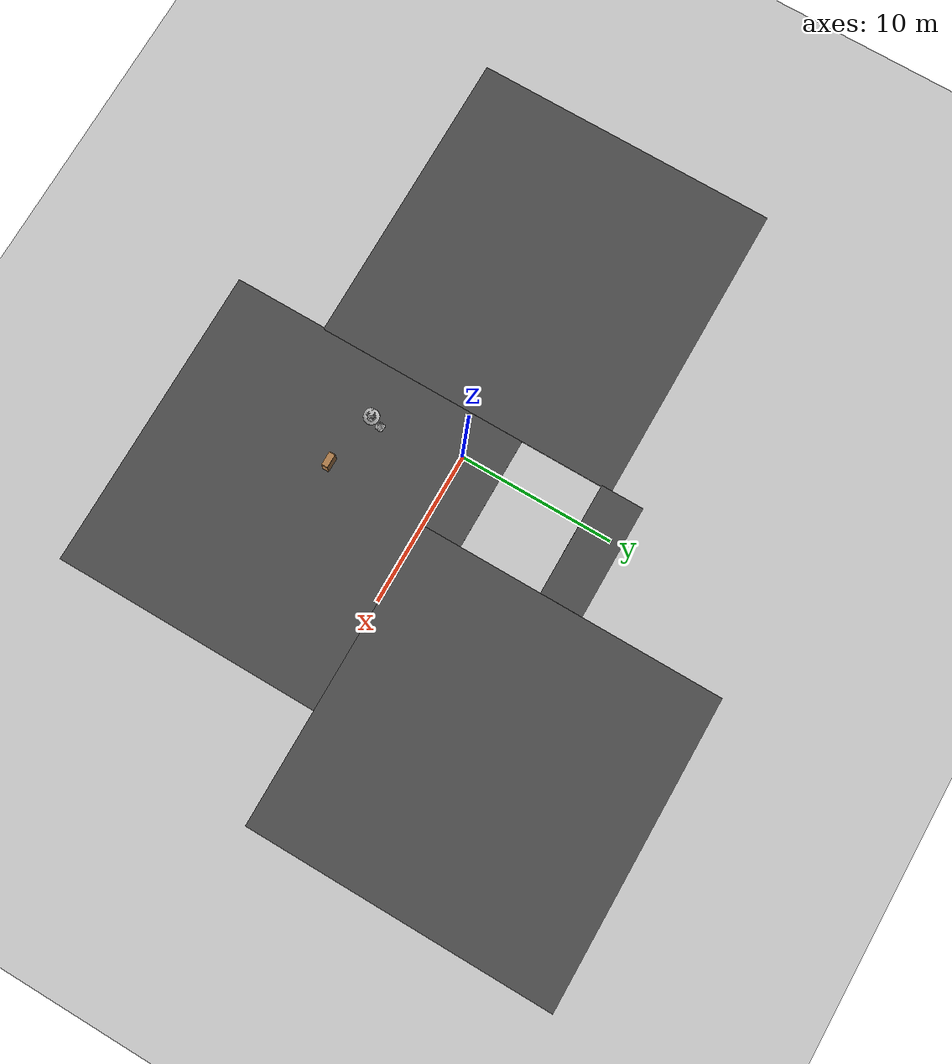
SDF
<sdf version="1.7">
 <world name="default">
  <model name="ground_plane">
   <static>1</static>
   <link name="link">
    <collision name="collision">
     <geometry><plane><normal>0 0 1</normal><size>100 100</size></plane></geometry>
     <surface><friction><ode><mu>100</mu><mu2>50</mu2></ode></friction></surface>
    </collision>
    <visual name="visual">
     <cast_shadows>0</cast_shadows>
     <geometry><plane><normal>0 0 1</normal><size>100 100</size></plane></geometry>
     <material>
      <script><uri>file://media/materials/scripts/gazebo.material</uri><name>Gazebo/Grey</name></script>
     </material>
    </visual>
   </link>
  </model>
  <model name="Construction Barrel_clone">
   <link name="link">
    <inertial>
     <pose>0 0 0.4 0 -0 0</pose>
     <mass>500</mass>
     <inertia><ixx>51.2096</ixx><iyy>51.2096</iyy><izz>25</izz><ixy>0</ixy><ixz>0</ixz><iyz>0</iyz></inertia>
    </inertial>
    <collision name="collision">
     <geometry><mesh><uri>model://construction_barrel/meshes/construction_barrel.dae</uri></mesh></geometry>
    </collision>
    <visual name="visual">
     <geometry><mesh><uri>model://construction_barrel/meshes/construction_barrel.dae</uri></mesh></geometry>
    </visual>
   </link>
   <pose>0.623823 -5.9827 0.009999 3e-06 -8e-06 -0.35048</pose>
  </model>
  <model name="bookshelf">
   <static>1</static>
   <link name="link">
    <inertial><mass>1</mass></inertial>
    <collision name="back">
     <pose>0 0.005 0.6 0 -0 0</pose>
     <geometry><box><size>0.9 0.01 1.2</size></box></geometry>
    </collision>
    <visual name="visual1">
     <pose>0 0.005 0.6 0 -0 0</pose>
     <geometry><box><size>0.9 0.01 1.2</size></box></geometry>
     <material>
      <script><uri>file://media/materials/scripts/gazebo.material</uri><name>Gazebo/Wood</name></script>
     </material>
    </visual>
    <collision name="left_side">
     <pose>0.45 -0.195 0.6 0 -0 0</pose>
     <geometry><box><size>0.02 0.4 1.2</size></box></geometry>
    </collision>
    <visual name="visual2">
     <pose>0.45 -0.195 0.6 0 -0 0</pose>
     <geometry><box><size>0.02 0.4 1.2</size></box></geometry>
     <material>
      <script><uri>file://media/materials/scripts/gazebo.material</uri><name>Gazebo/Wood</name></script>
     </material>
    </visual>
    <collision name="right_side">
     <pose>-0.45 -0.195 0.6 0 -0 0</pose>
     <geometry><box><size>0.02 0.4 1.2</size></box></geometry>
    </collision>
    <visual name="visual3">
     <pose>-0.45 -0.195 0.6 0 -0 0</pose>
     <geometry><box><size>0.02 0.4 1.2</size></box></geometry>
     <material>
      <script><uri>file://media/materials/scripts/gazebo.material</uri><name>Gazebo/Wood</name></script>
     </material>
    </visual>
    <collision name="bottom">
     <pose>0 -0.195 0.03 0 -0 0</pose>
     <geometry><box><size>0.88 0.4 0.06</size></box></geometry>
    </collision>
    <visual name="visual4">
     <pose>0 -0.195 0.03 0 -0 0</pose>
     <geometry><box><size>0.88 0.4 0.06</size></box></geometry>
     <material>
      <script><uri>file://media/materials/scripts/gazebo.material</uri><name>Gazebo/Wood</name></script>
     </material>
    </visual>
    <collision name="top">
     <pose>0 -0.195 1.19 0 -0 0</pose>
     <geometry><box><size>0.88 0.4 0.02</size></box></geometry>
    </collision>
    <visual name="visual5">
     <pose>0 -0.195 1.19 0 -0 0</pose>
     <geometry><box><size>0.88 0.4 0.02</size></box></geometry>
     <material>
      <script><uri>file://media/materials/scripts/gazebo.material</uri><name>Gazebo/Wood</name></script>
     </material>
    </visual>
    <collision name="low_shelf">
     <pose>0 -0.195 0.43 0 -0 0</pose>
     <geometry><box><size>0.88 0.4 0.02</size></box></geometry>
    </collision>
    <visual name="visual6">
     <pose>0 -0.195 0.43 0 -0 0</pose>
     <geometry><box><size>0.88 0.4 0.02</size></box></geometry>
     <material>
      <script><uri>file://media/materials/scripts/gazebo.material</uri><name>Gazebo/Wood</name></script>
     </material>
    </visual>
    <collision name="high_shelf">
     <pose>0 -0.195 0.8 0 -0 0</pose>
     <geometry><box><size>0.88 0.4 0.02</size></box></geometry>
    </collision>
    <visual name="visual7">
     <pose>0 -0.195 0.8 0 -0 0</pose>
     <geometry><box><size>0.88 0.4 0.02</size></box></geometry>
     <material>
      <script><uri>file://media/materials/scripts/gazebo.material</uri><name>Gazebo/Wood</name></script>
     </material>
    </visual>
   </link>
   <pose>4.37057 -6.44632 0 0 -0 0</pose>
  </model>
  <model name="asphalt_plane">
   <static>1</static>
   <link name="link">
    <collision name="collision"><geometry><box><size>20 20 0.1</size></box></geometry></collision>
    <visual name="visual">
     <cast_shadows>0</cast_shadows>
     <geometry><box><size>20 20 0.1</size></box></geometry>
     <material>
      <script>
       <uri>model://asphalt_plane/materials/scripts</uri>
       <uri>model://asphalt_plane/materials/textures</uri>
       <name>vrc/asphalt</name>
      </script>
     </material>
    </visual>
   </link>
   <pose>-12.6134 -1.31009 -0.045514 0 -0 0</pose>
  </model>
  <model name="asphalt_plane_clone">
   <static>1</static>
   <link name="link">
    <collision name="collision"><geometry><box><size>20 20 0.1</size></box></geometry></collision>
    <visual name="visual">
     <cast_shadows>0</cast_shadows>
     <geometry><box><size>20 20 0.1</size></box></geometry>
     <material>
      <script>
       <uri>model://asphalt_plane/materials/scripts</uri>
       <uri>model://asphalt_plane/materials/textures</uri>
       <name>vrc/asphalt</name>
      </script>
     </material>
    </visual>
   </link>
   <pose>7.28847 -7.40258 -0.049085 0 -0 0</pose>
  </model>
  <model name="asphalt_plane_clone_0">
   <static>1</static>
   <link name="link">
    <collision name="collision"><geometry><box><size>20 20 0.1</size></box></geometry></collision>
    <visual name="visual">
     <cast_shadows>0</cast_shadows>
     <geometry><box><size>20 20 0.1</size></box></geometry>
     <material>
      <script>
       <uri>model://asphalt_plane/materials/scripts</uri>
       <uri>model://asphalt_plane/materials/textures</uri>
       <name>vrc/asphalt</name>
      </script>
     </material>
    </visual>
   </link>
   <pose>14.7555 10.0653 -0.045343 0 -0 0</pose>
  </model>
  <model name="Construction Cone_clone">
   <link name="link">
    <collision name="collision">
     <geometry>
      <mesh><scale>10 10 10</scale><uri>model://construction_cone/meshes/construction_cone.dae</uri></mesh>
     </geometry>
    </collision>
    <visual name="visual">
     <geometry>
      <mesh><scale>10 10 10</scale><uri>model://construction_cone/meshes/construction_cone.dae</uri></mesh>
     </geometry>
    </visual>
    <inertial>
     <inertia><ixx>1</ixx><ixy>0</ixy><ixz>0</ixz><iyy>1</iyy><iyz>0</iyz><izz>1</izz></inertia>
     <mass>1</mass>
    </inertial>
   </link>
   <pose>0.909638 -5.19132 0.01 -0 -0 -1.69187</pose>
  </model>
  <model name="asphalt_plane_0">
   <static>1</static>
   <link name="link">
    <collision name="collision"><geometry><box><size>2.79584 7.45522 0.1</size></box></geometry></collision>
    <visual name="visual">
     <cast_shadows>0</cast_shadows>
     <geometry><box><size>2.79584 7.45522 0.1</size></box></geometry>
     <material>
      <script>
       <uri>model://asphalt_plane/materials/scripts</uri>
       <uri>model://asphalt_plane/materials/textures</uri>
       <name>vrc/asphalt</name>
      </script>
     </material>
    </visual>
   </link>
   <pose>1.029 9.39958 -0.036249 0 0 -1.57</pose>
  </model>
 </world>
</sdf>
